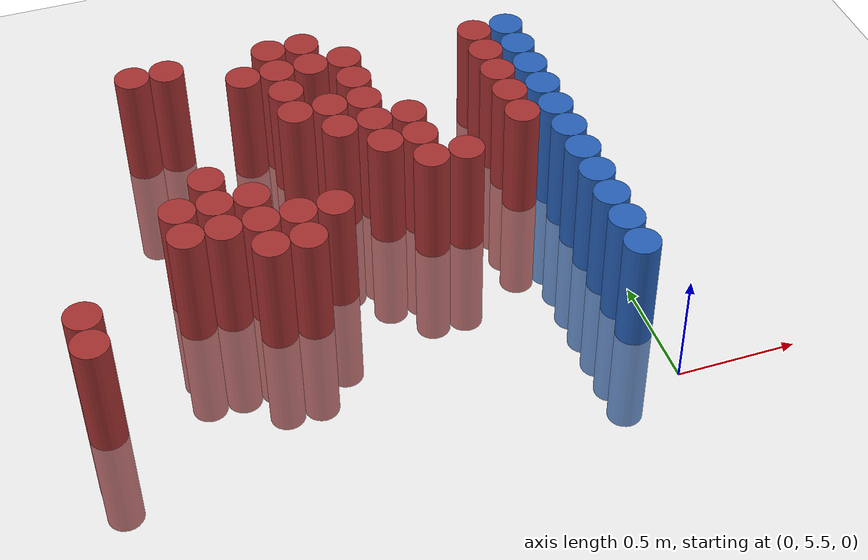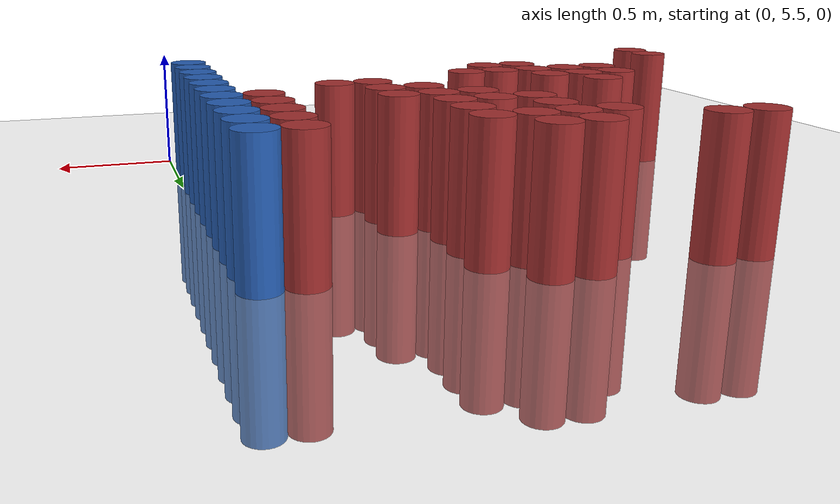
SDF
<sdf version="1.6">
 <world name="default">
  <model name="ground_plane">
   <static>1</static>
   <link name="link">
    <collision name="collision">
     <geometry><plane><normal>0 0 1</normal><size>100 100</size></plane></geometry>
     <surface><friction><ode><mu>100</mu><mu2>50</mu2></ode></friction></surface>
    </collision>
    <visual name="visual">
     <cast_shadows>0</cast_shadows>
     <geometry><plane><normal>0 0 1</normal><size>100 100</size></plane></geometry>
     <material>
      <script><uri>file://media/materials/scripts/gazebo.material</uri><name>Gazebo/Grey</name></script>
     </material>
    </visual>
   </link>
  </model>
  <model name="unit_cylinder_211">
   <static>1</static>
   <pose>-2.175000 5.925000 0.000000 0.000000 0.000000 0.000000</pose>
   <link name="link">
    <inertial>
     <mass>1</mass>
     <inertia><ixx>0.145833</ixx><ixy>0</ixy><ixz>0</ixz><iyy>0.145833</iyy><iyz>0</iyz><izz>0.125</izz></inertia>
    </inertial>
    <collision name="collision">
     <geometry><cylinder><radius>0.075000</radius><length>1</length></cylinder></geometry>
    </collision>
    <visual name="visual">
     <geometry><cylinder><radius>0.075000</radius><length>1</length></cylinder></geometry>
     <material>
      <ambient>0.648000 0.192000 0.192000 1</ambient>
      <diffuse>0.648000 0.192000 0.192000 1</diffuse>
     </material>
     <material>
      <script><name>Gazebo/Grey</name><uri>file://media/materials/scripts/gazebo.material</uri></script>
     </material>
    </visual>
   </link>
  </model>
  <model name="unit_cylinder_212">
   <static>1</static>
   <pose>-2.175000 6.075000 0.000000 0.000000 0.000000 0.000000</pose>
   <link name="link">
    <inertial>
     <mass>1</mass>
     <inertia><ixx>0.145833</ixx><ixy>0</ixy><ixz>0</ixz><iyy>0.145833</iyy><iyz>0</iyz><izz>0.125</izz></inertia>
    </inertial>
    <collision name="collision">
     <geometry><cylinder><radius>0.075000</radius><length>1</length></cylinder></geometry>
    </collision>
    <visual name="visual">
     <geometry><cylinder><radius>0.075000</radius><length>1</length></cylinder></geometry>
     <material>
      <ambient>0.648000 0.192000 0.192000 1</ambient>
      <diffuse>0.648000 0.192000 0.192000 1</diffuse>
     </material>
     <material>
      <script><name>Gazebo/Grey</name><uri>file://media/materials/scripts/gazebo.material</uri></script>
     </material>
    </visual>
   </link>
  </model>
  <model name="unit_cylinder_228">
   <static>1</static>
   <pose>-1.725000 6.375000 0.000000 0.000000 0.000000 0.000000</pose>
   <link name="link">
    <inertial>
     <mass>1</mass>
     <inertia><ixx>0.145833</ixx><ixy>0</ixy><ixz>0</ixz><iyy>0.145833</iyy><iyz>0</iyz><izz>0.125</izz></inertia>
    </inertial>
    <collision name="collision">
     <geometry><cylinder><radius>0.075000</radius><length>1</length></cylinder></geometry>
    </collision>
    <visual name="visual">
     <geometry><cylinder><radius>0.075000</radius><length>1</length></cylinder></geometry>
     <material>
      <ambient>0.648000 0.192000 0.192000 1</ambient>
      <diffuse>0.648000 0.192000 0.192000 1</diffuse>
     </material>
     <material>
      <script><name>Gazebo/Grey</name><uri>file://media/materials/scripts/gazebo.material</uri></script>
     </material>
    </visual>
   </link>
  </model>
  <model name="unit_cylinder_229">
   <static>1</static>
   <pose>-1.725000 6.525000 0.000000 0.000000 0.000000 0.000000</pose>
   <link name="link">
    <inertial>
     <mass>1</mass>
     <inertia><ixx>0.145833</ixx><ixy>0</ixy><ixz>0</ixz><iyy>0.145833</iyy><iyz>0</iyz><izz>0.125</izz></inertia>
    </inertial>
    <collision name="collision">
     <geometry><cylinder><radius>0.075000</radius><length>1</length></cylinder></geometry>
    </collision>
    <visual name="visual">
     <geometry><cylinder><radius>0.075000</radius><length>1</length></cylinder></geometry>
     <material>
      <ambient>0.648000 0.192000 0.192000 1</ambient>
      <diffuse>0.648000 0.192000 0.192000 1</diffuse>
     </material>
     <material>
      <script><name>Gazebo/Grey</name><uri>file://media/materials/scripts/gazebo.material</uri></script>
     </material>
    </visual>
   </link>
  </model>
  <model name="unit_cylinder_230">
   <static>1</static>
   <pose>-1.725000 7.425000 0.000000 0.000000 0.000000 0.000000</pose>
   <link name="link">
    <inertial>
     <mass>1</mass>
     <inertia><ixx>0.145833</ixx><ixy>0</ixy><ixz>0</ixz><iyy>0.145833</iyy><iyz>0</iyz><izz>0.125</izz></inertia>
    </inertial>
    <collision name="collision">
     <geometry><cylinder><radius>0.075000</radius><length>1</length></cylinder></geometry>
    </collision>
    <visual name="visual">
     <geometry><cylinder><radius>0.075000</radius><length>1</length></cylinder></geometry>
     <material>
      <ambient>0.648000 0.192000 0.192000 1</ambient>
      <diffuse>0.648000 0.192000 0.192000 1</diffuse>
     </material>
     <material>
      <script><name>Gazebo/Grey</name><uri>file://media/materials/scripts/gazebo.material</uri></script>
     </material>
    </visual>
   </link>
  </model>
  <model name="unit_cylinder_235">
   <static>1</static>
   <pose>-1.575000 6.375000 0.000000 0.000000 0.000000 0.000000</pose>
   <link name="link">
    <inertial>
     <mass>1</mass>
     <inertia><ixx>0.145833</ixx><ixy>0</ixy><ixz>0</ixz><iyy>0.145833</iyy><iyz>0</iyz><izz>0.125</izz></inertia>
    </inertial>
    <collision name="collision">
     <geometry><cylinder><radius>0.075000</radius><length>1</length></cylinder></geometry>
    </collision>
    <visual name="visual">
     <geometry><cylinder><radius>0.075000</radius><length>1</length></cylinder></geometry>
     <material>
      <ambient>0.648000 0.192000 0.192000 1</ambient>
      <diffuse>0.648000 0.192000 0.192000 1</diffuse>
     </material>
     <material>
      <script><name>Gazebo/Grey</name><uri>file://media/materials/scripts/gazebo.material</uri></script>
     </material>
    </visual>
   </link>
  </model>
  <model name="unit_cylinder_236">
   <static>1</static>
   <pose>-1.575000 6.525000 0.000000 0.000000 0.000000 0.000000</pose>
   <link name="link">
    <inertial>
     <mass>1</mass>
     <inertia><ixx>0.145833</ixx><ixy>0</ixy><ixz>0</ixz><iyy>0.145833</iyy><iyz>0</iyz><izz>0.125</izz></inertia>
    </inertial>
    <collision name="collision">
     <geometry><cylinder><radius>0.075000</radius><length>1</length></cylinder></geometry>
    </collision>
    <visual name="visual">
     <geometry><cylinder><radius>0.075000</radius><length>1</length></cylinder></geometry>
     <material>
      <ambient>0.648000 0.192000 0.192000 1</ambient>
      <diffuse>0.648000 0.192000 0.192000 1</diffuse>
     </material>
     <material>
      <script><name>Gazebo/Grey</name><uri>file://media/materials/scripts/gazebo.material</uri></script>
     </material>
    </visual>
   </link>
  </model>
  <model name="unit_cylinder_237">
   <static>1</static>
   <pose>-1.575000 6.675000 0.000000 0.000000 0.000000 0.000000</pose>
   <link name="link">
    <inertial>
     <mass>1</mass>
     <inertia><ixx>0.145833</ixx><ixy>0</ixy><ixz>0</ixz><iyy>0.145833</iyy><iyz>0</iyz><izz>0.125</izz></inertia>
    </inertial>
    <collision name="collision">
     <geometry><cylinder><radius>0.075000</radius><length>1</length></cylinder></geometry>
    </collision>
    <visual name="visual">
     <geometry><cylinder><radius>0.075000</radius><length>1</length></cylinder></geometry>
     <material>
      <ambient>0.648000 0.192000 0.192000 1</ambient>
      <diffuse>0.648000 0.192000 0.192000 1</diffuse>
     </material>
     <material>
      <script><name>Gazebo/Grey</name><uri>file://media/materials/scripts/gazebo.material</uri></script>
     </material>
    </visual>
   </link>
  </model>
  <model name="unit_cylinder_238">
   <static>1</static>
   <pose>-1.575000 7.425000 0.000000 0.000000 0.000000 0.000000</pose>
   <link name="link">
    <inertial>
     <mass>1</mass>
     <inertia><ixx>0.145833</ixx><ixy>0</ixy><ixz>0</ixz><iyy>0.145833</iyy><iyz>0</iyz><izz>0.125</izz></inertia>
    </inertial>
    <collision name="collision">
     <geometry><cylinder><radius>0.075000</radius><length>1</length></cylinder></geometry>
    </collision>
    <visual name="visual">
     <geometry><cylinder><radius>0.075000</radius><length>1</length></cylinder></geometry>
     <material>
      <ambient>0.648000 0.192000 0.192000 1</ambient>
      <diffuse>0.648000 0.192000 0.192000 1</diffuse>
     </material>
     <material>
      <script><name>Gazebo/Grey</name><uri>file://media/materials/scripts/gazebo.material</uri></script>
     </material>
    </visual>
   </link>
  </model>
  <model name="unit_cylinder_242">
   <static>1</static>
   <pose>-1.425000 6.225000 0.000000 0.000000 0.000000 0.000000</pose>
   <link name="link">
    <inertial>
     <mass>1</mass>
     <inertia><ixx>0.145833</ixx><ixy>0</ixy><ixz>0</ixz><iyy>0.145833</iyy><iyz>0</iyz><izz>0.125</izz></inertia>
    </inertial>
    <collision name="collision">
     <geometry><cylinder><radius>0.075000</radius><length>1</length></cylinder></geometry>
    </collision>
    <visual name="visual">
     <geometry><cylinder><radius>0.075000</radius><length>1</length></cylinder></geometry>
     <material>
      <ambient>0.648000 0.192000 0.192000 1</ambient>
      <diffuse>0.648000 0.192000 0.192000 1</diffuse>
     </material>
     <material>
      <script><name>Gazebo/Grey</name><uri>file://media/materials/scripts/gazebo.material</uri></script>
     </material>
    </visual>
   </link>
  </model>
  <model name="unit_cylinder_243">
   <static>1</static>
   <pose>-1.425000 6.375000 0.000000 0.000000 0.000000 0.000000</pose>
   <link name="link">
    <inertial>
     <mass>1</mass>
     <inertia><ixx>0.145833</ixx><ixy>0</ixy><ixz>0</ixz><iyy>0.145833</iyy><iyz>0</iyz><izz>0.125</izz></inertia>
    </inertial>
    <collision name="collision">
     <geometry><cylinder><radius>0.075000</radius><length>1</length></cylinder></geometry>
    </collision>
    <visual name="visual">
     <geometry><cylinder><radius>0.075000</radius><length>1</length></cylinder></geometry>
     <material>
      <ambient>0.648000 0.192000 0.192000 1</ambient>
      <diffuse>0.648000 0.192000 0.192000 1</diffuse>
     </material>
     <material>
      <script><name>Gazebo/Grey</name><uri>file://media/materials/scripts/gazebo.material</uri></script>
     </material>
    </visual>
   </link>
  </model>
  <model name="unit_cylinder_244">
   <static>1</static>
   <pose>-1.425000 6.525000 0.000000 0.000000 0.000000 0.000000</pose>
   <link name="link">
    <inertial>
     <mass>1</mass>
     <inertia><ixx>0.145833</ixx><ixy>0</ixy><ixz>0</ixz><iyy>0.145833</iyy><iyz>0</iyz><izz>0.125</izz></inertia>
    </inertial>
    <collision name="collision">
     <geometry><cylinder><radius>0.075000</radius><length>1</length></cylinder></geometry>
    </collision>
    <visual name="visual">
     <geometry><cylinder><radius>0.075000</radius><length>1</length></cylinder></geometry>
     <material>
      <ambient>0.648000 0.192000 0.192000 1</ambient>
      <diffuse>0.648000 0.192000 0.192000 1</diffuse>
     </material>
     <material>
      <script><name>Gazebo/Grey</name><uri>file://media/materials/scripts/gazebo.material</uri></script>
     </material>
    </visual>
   </link>
  </model>
  <model name="unit_cylinder_250">
   <static>1</static>
   <pose>-1.275000 6.225000 0.000000 0.000000 0.000000 0.000000</pose>
   <link name="link">
    <inertial>
     <mass>1</mass>
     <inertia><ixx>0.145833</ixx><ixy>0</ixy><ixz>0</ixz><iyy>0.145833</iyy><iyz>0</iyz><izz>0.125</izz></inertia>
    </inertial>
    <collision name="collision">
     <geometry><cylinder><radius>0.075000</radius><length>1</length></cylinder></geometry>
    </collision>
    <visual name="visual">
     <geometry><cylinder><radius>0.075000</radius><length>1</length></cylinder></geometry>
     <material>
      <ambient>0.648000 0.192000 0.192000 1</ambient>
      <diffuse>0.648000 0.192000 0.192000 1</diffuse>
     </material>
     <material>
      <script><name>Gazebo/Grey</name><uri>file://media/materials/scripts/gazebo.material</uri></script>
     </material>
    </visual>
   </link>
  </model>
  <model name="unit_cylinder_251">
   <static>1</static>
   <pose>-1.275000 6.375000 0.000000 0.000000 0.000000 0.000000</pose>
   <link name="link">
    <inertial>
     <mass>1</mass>
     <inertia><ixx>0.145833</ixx><ixy>0</ixy><ixz>0</ixz><iyy>0.145833</iyy><iyz>0</iyz><izz>0.125</izz></inertia>
    </inertial>
    <collision name="collision">
     <geometry><cylinder><radius>0.075000</radius><length>1</length></cylinder></geometry>
    </collision>
    <visual name="visual">
     <geometry><cylinder><radius>0.075000</radius><length>1</length></cylinder></geometry>
     <material>
      <ambient>0.648000 0.192000 0.192000 1</ambient>
      <diffuse>0.648000 0.192000 0.192000 1</diffuse>
     </material>
     <material>
      <script><name>Gazebo/Grey</name><uri>file://media/materials/scripts/gazebo.material</uri></script>
     </material>
    </visual>
   </link>
  </model>
  <model name="unit_cylinder_252">
   <static>1</static>
   <pose>-1.275000 7.275000 0.000000 0.000000 0.000000 0.000000</pose>
   <link name="link">
    <inertial>
     <mass>1</mass>
     <inertia><ixx>0.145833</ixx><ixy>0</ixy><ixz>0</ixz><iyy>0.145833</iyy><iyz>0</iyz><izz>0.125</izz></inertia>
    </inertial>
    <collision name="collision">
     <geometry><cylinder><radius>0.075000</radius><length>1</length></cylinder></geometry>
    </collision>
    <visual name="visual">
     <geometry><cylinder><radius>0.075000</radius><length>1</length></cylinder></geometry>
     <material>
      <ambient>0.648000 0.192000 0.192000 1</ambient>
      <diffuse>0.648000 0.192000 0.192000 1</diffuse>
     </material>
     <material>
      <script><name>Gazebo/Grey</name><uri>file://media/materials/scripts/gazebo.material</uri></script>
     </material>
    </visual>
   </link>
  </model>
  <model name="unit_cylinder_258">
   <static>1</static>
   <pose>-1.125000 6.375000 0.000000 0.000000 0.000000 0.000000</pose>
   <link name="link">
    <inertial>
     <mass>1</mass>
     <inertia><ixx>0.145833</ixx><ixy>0</ixy><ixz>0</ixz><iyy>0.145833</iyy><iyz>0</iyz><izz>0.125</izz></inertia>
    </inertial>
    <collision name="collision">
     <geometry><cylinder><radius>0.075000</radius><length>1</length></cylinder></geometry>
    </collision>
    <visual name="visual">
     <geometry><cylinder><radius>0.075000</radius><length>1</length></cylinder></geometry>
     <material>
      <ambient>0.648000 0.192000 0.192000 1</ambient>
      <diffuse>0.648000 0.192000 0.192000 1</diffuse>
     </material>
     <material>
      <script><name>Gazebo/Grey</name><uri>file://media/materials/scripts/gazebo.material</uri></script>
     </material>
    </visual>
   </link>
  </model>
  <model name="unit_cylinder_259">
   <static>1</static>
   <pose>-1.125000 6.975000 0.000000 0.000000 0.000000 0.000000</pose>
   <link name="link">
    <inertial>
     <mass>1</mass>
     <inertia><ixx>0.145833</ixx><ixy>0</ixy><ixz>0</ixz><iyy>0.145833</iyy><iyz>0</iyz><izz>0.125</izz></inertia>
    </inertial>
    <collision name="collision">
     <geometry><cylinder><radius>0.075000</radius><length>1</length></cylinder></geometry>
    </collision>
    <visual name="visual">
     <geometry><cylinder><radius>0.075000</radius><length>1</length></cylinder></geometry>
     <material>
      <ambient>0.648000 0.192000 0.192000 1</ambient>
      <diffuse>0.648000 0.192000 0.192000 1</diffuse>
     </material>
     <material>
      <script><name>Gazebo/Grey</name><uri>file://media/materials/scripts/gazebo.material</uri></script>
     </material>
    </visual>
   </link>
  </model>
  <model name="unit_cylinder_260">
   <static>1</static>
   <pose>-1.125000 7.125000 0.000000 0.000000 0.000000 0.000000</pose>
   <link name="link">
    <inertial>
     <mass>1</mass>
     <inertia><ixx>0.145833</ixx><ixy>0</ixy><ixz>0</ixz><iyy>0.145833</iyy><iyz>0</iyz><izz>0.125</izz></inertia>
    </inertial>
    <collision name="collision">
     <geometry><cylinder><radius>0.075000</radius><length>1</length></cylinder></geometry>
    </collision>
    <visual name="visual">
     <geometry><cylinder><radius>0.075000</radius><length>1</length></cylinder></geometry>
     <material>
      <ambient>0.648000 0.192000 0.192000 1</ambient>
      <diffuse>0.648000 0.192000 0.192000 1</diffuse>
     </material>
     <material>
      <script><name>Gazebo/Grey</name><uri>file://media/materials/scripts/gazebo.material</uri></script>
     </material>
    </visual>
   </link>
  </model>
  <model name="unit_cylinder_261">
   <static>1</static>
   <pose>-1.125000 7.275000 0.000000 0.000000 0.000000 0.000000</pose>
   <link name="link">
    <inertial>
     <mass>1</mass>
     <inertia><ixx>0.145833</ixx><ixy>0</ixy><ixz>0</ixz><iyy>0.145833</iyy><iyz>0</iyz><izz>0.125</izz></inertia>
    </inertial>
    <collision name="collision">
     <geometry><cylinder><radius>0.075000</radius><length>1</length></cylinder></geometry>
    </collision>
    <visual name="visual">
     <geometry><cylinder><radius>0.075000</radius><length>1</length></cylinder></geometry>
     <material>
      <ambient>0.648000 0.192000 0.192000 1</ambient>
      <diffuse>0.648000 0.192000 0.192000 1</diffuse>
     </material>
     <material>
      <script><name>Gazebo/Grey</name><uri>file://media/materials/scripts/gazebo.material</uri></script>
     </material>
    </visual>
   </link>
  </model>
  <model name="unit_cylinder_262">
   <static>1</static>
   <pose>-1.125000 7.425000 0.000000 0.000000 0.000000 0.000000</pose>
   <link name="link">
    <inertial>
     <mass>1</mass>
     <inertia><ixx>0.145833</ixx><ixy>0</ixy><ixz>0</ixz><iyy>0.145833</iyy><iyz>0</iyz><izz>0.125</izz></inertia>
    </inertial>
    <collision name="collision">
     <geometry><cylinder><radius>0.075000</radius><length>1</length></cylinder></geometry>
    </collision>
    <visual name="visual">
     <geometry><cylinder><radius>0.075000</radius><length>1</length></cylinder></geometry>
     <material>
      <ambient>0.648000 0.192000 0.192000 1</ambient>
      <diffuse>0.648000 0.192000 0.192000 1</diffuse>
     </material>
     <material>
      <script><name>Gazebo/Grey</name><uri>file://media/materials/scripts/gazebo.material</uri></script>
     </material>
    </visual>
   </link>
  </model>
  <model name="unit_cylinder_267">
   <static>1</static>
   <pose>-0.975000 6.825000 0.000000 0.000000 0.000000 0.000000</pose>
   <link name="link">
    <inertial>
     <mass>1</mass>
     <inertia><ixx>0.145833</ixx><ixy>0</ixy><ixz>0</ixz><iyy>0.145833</iyy><iyz>0</iyz><izz>0.125</izz></inertia>
    </inertial>
    <collision name="collision">
     <geometry><cylinder><radius>0.075000</radius><length>1</length></cylinder></geometry>
    </collision>
    <visual name="visual">
     <geometry><cylinder><radius>0.075000</radius><length>1</length></cylinder></geometry>
     <material>
      <ambient>0.648000 0.192000 0.192000 1</ambient>
      <diffuse>0.648000 0.192000 0.192000 1</diffuse>
     </material>
     <material>
      <script><name>Gazebo/Grey</name><uri>file://media/materials/scripts/gazebo.material</uri></script>
     </material>
    </visual>
   </link>
  </model>
  <model name="unit_cylinder_268">
   <static>1</static>
   <pose>-0.975000 6.975000 0.000000 0.000000 0.000000 0.000000</pose>
   <link name="link">
    <inertial>
     <mass>1</mass>
     <inertia><ixx>0.145833</ixx><ixy>0</ixy><ixz>0</ixz><iyy>0.145833</iyy><iyz>0</iyz><izz>0.125</izz></inertia>
    </inertial>
    <collision name="collision">
     <geometry><cylinder><radius>0.075000</radius><length>1</length></cylinder></geometry>
    </collision>
    <visual name="visual">
     <geometry><cylinder><radius>0.075000</radius><length>1</length></cylinder></geometry>
     <material>
      <ambient>0.648000 0.192000 0.192000 1</ambient>
      <diffuse>0.648000 0.192000 0.192000 1</diffuse>
     </material>
     <material>
      <script><name>Gazebo/Grey</name><uri>file://media/materials/scripts/gazebo.material</uri></script>
     </material>
    </visual>
   </link>
  </model>
  <model name="unit_cylinder_269">
   <static>1</static>
   <pose>-0.975000 7.275000 0.000000 0.000000 0.000000 0.000000</pose>
   <link name="link">
    <inertial>
     <mass>1</mass>
     <inertia><ixx>0.145833</ixx><ixy>0</ixy><ixz>0</ixz><iyy>0.145833</iyy><iyz>0</iyz><izz>0.125</izz></inertia>
    </inertial>
    <collision name="collision">
     <geometry><cylinder><radius>0.075000</radius><length>1</length></cylinder></geometry>
    </collision>
    <visual name="visual">
     <geometry><cylinder><radius>0.075000</radius><length>1</length></cylinder></geometry>
     <material>
      <ambient>0.648000 0.192000 0.192000 1</ambient>
      <diffuse>0.648000 0.192000 0.192000 1</diffuse>
     </material>
     <material>
      <script><name>Gazebo/Grey</name><uri>file://media/materials/scripts/gazebo.material</uri></script>
     </material>
    </visual>
   </link>
  </model>
  <model name="unit_cylinder_270">
   <static>1</static>
   <pose>-0.975000 7.425000 0.000000 0.000000 0.000000 0.000000</pose>
   <link name="link">
    <inertial>
     <mass>1</mass>
     <inertia><ixx>0.145833</ixx><ixy>0</ixy><ixz>0</ixz><iyy>0.145833</iyy><iyz>0</iyz><izz>0.125</izz></inertia>
    </inertial>
    <collision name="collision">
     <geometry><cylinder><radius>0.075000</radius><length>1</length></cylinder></geometry>
    </collision>
    <visual name="visual">
     <geometry><cylinder><radius>0.075000</radius><length>1</length></cylinder></geometry>
     <material>
      <ambient>0.648000 0.192000 0.192000 1</ambient>
      <diffuse>0.648000 0.192000 0.192000 1</diffuse>
     </material>
     <material>
      <script><name>Gazebo/Grey</name><uri>file://media/materials/scripts/gazebo.material</uri></script>
     </material>
    </visual>
   </link>
  </model>
  <model name="unit_cylinder_276">
   <static>1</static>
   <pose>-0.825000 6.675000 0.000000 0.000000 0.000000 0.000000</pose>
   <link name="link">
    <inertial>
     <mass>1</mass>
     <inertia><ixx>0.145833</ixx><ixy>0</ixy><ixz>0</ixz><iyy>0.145833</iyy><iyz>0</iyz><izz>0.125</izz></inertia>
    </inertial>
    <collision name="collision">
     <geometry><cylinder><radius>0.075000</radius><length>1</length></cylinder></geometry>
    </collision>
    <visual name="visual">
     <geometry><cylinder><radius>0.075000</radius><length>1</length></cylinder></geometry>
     <material>
      <ambient>0.648000 0.192000 0.192000 1</ambient>
      <diffuse>0.648000 0.192000 0.192000 1</diffuse>
     </material>
     <material>
      <script><name>Gazebo/Grey</name><uri>file://media/materials/scripts/gazebo.material</uri></script>
     </material>
    </visual>
   </link>
  </model>
  <model name="unit_cylinder_277">
   <static>1</static>
   <pose>-0.825000 6.825000 0.000000 0.000000 0.000000 0.000000</pose>
   <link name="link">
    <inertial>
     <mass>1</mass>
     <inertia><ixx>0.145833</ixx><ixy>0</ixy><ixz>0</ixz><iyy>0.145833</iyy><iyz>0</iyz><izz>0.125</izz></inertia>
    </inertial>
    <collision name="collision">
     <geometry><cylinder><radius>0.075000</radius><length>1</length></cylinder></geometry>
    </collision>
    <visual name="visual">
     <geometry><cylinder><radius>0.075000</radius><length>1</length></cylinder></geometry>
     <material>
      <ambient>0.648000 0.192000 0.192000 1</ambient>
      <diffuse>0.648000 0.192000 0.192000 1</diffuse>
     </material>
     <material>
      <script><name>Gazebo/Grey</name><uri>file://media/materials/scripts/gazebo.material</uri></script>
     </material>
    </visual>
   </link>
  </model>
  <model name="unit_cylinder_278">
   <static>1</static>
   <pose>-0.825000 6.975000 0.000000 0.000000 0.000000 0.000000</pose>
   <link name="link">
    <inertial>
     <mass>1</mass>
     <inertia><ixx>0.145833</ixx><ixy>0</ixy><ixz>0</ixz><iyy>0.145833</iyy><iyz>0</iyz><izz>0.125</izz></inertia>
    </inertial>
    <collision name="collision">
     <geometry><cylinder><radius>0.075000</radius><length>1</length></cylinder></geometry>
    </collision>
    <visual name="visual">
     <geometry><cylinder><radius>0.075000</radius><length>1</length></cylinder></geometry>
     <material>
      <ambient>0.648000 0.192000 0.192000 1</ambient>
      <diffuse>0.648000 0.192000 0.192000 1</diffuse>
     </material>
     <material>
      <script><name>Gazebo/Grey</name><uri>file://media/materials/scripts/gazebo.material</uri></script>
     </material>
    </visual>
   </link>
  </model>
  <model name="unit_cylinder_279">
   <static>1</static>
   <pose>-0.825000 7.125000 0.000000 0.000000 0.000000 0.000000</pose>
   <link name="link">
    <inertial>
     <mass>1</mass>
     <inertia><ixx>0.145833</ixx><ixy>0</ixy><ixz>0</ixz><iyy>0.145833</iyy><iyz>0</iyz><izz>0.125</izz></inertia>
    </inertial>
    <collision name="collision">
     <geometry><cylinder><radius>0.075000</radius><length>1</length></cylinder></geometry>
    </collision>
    <visual name="visual">
     <geometry><cylinder><radius>0.075000</radius><length>1</length></cylinder></geometry>
     <material>
      <ambient>0.648000 0.192000 0.192000 1</ambient>
      <diffuse>0.648000 0.192000 0.192000 1</diffuse>
     </material>
     <material>
      <script><name>Gazebo/Grey</name><uri>file://media/materials/scripts/gazebo.material</uri></script>
     </material>
    </visual>
   </link>
  </model>
  <model name="unit_cylinder_280">
   <static>1</static>
   <pose>-0.825000 7.275000 0.000000 0.000000 0.000000 0.000000</pose>
   <link name="link">
    <inertial>
     <mass>1</mass>
     <inertia><ixx>0.145833</ixx><ixy>0</ixy><ixz>0</ixz><iyy>0.145833</iyy><iyz>0</iyz><izz>0.125</izz></inertia>
    </inertial>
    <collision name="collision">
     <geometry><cylinder><radius>0.075000</radius><length>1</length></cylinder></geometry>
    </collision>
    <visual name="visual">
     <geometry><cylinder><radius>0.075000</radius><length>1</length></cylinder></geometry>
     <material>
      <ambient>0.648000 0.192000 0.192000 1</ambient>
      <diffuse>0.648000 0.192000 0.192000 1</diffuse>
     </material>
     <material>
      <script><name>Gazebo/Grey</name><uri>file://media/materials/scripts/gazebo.material</uri></script>
     </material>
    </visual>
   </link>
  </model>
  <model name="unit_cylinder_288">
   <static>1</static>
   <pose>-0.675000 6.525000 0.000000 0.000000 0.000000 0.000000</pose>
   <link name="link">
    <inertial>
     <mass>1</mass>
     <inertia><ixx>0.145833</ixx><ixy>0</ixy><ixz>0</ixz><iyy>0.145833</iyy><iyz>0</iyz><izz>0.125</izz></inertia>
    </inertial>
    <collision name="collision">
     <geometry><cylinder><radius>0.075000</radius><length>1</length></cylinder></geometry>
    </collision>
    <visual name="visual">
     <geometry><cylinder><radius>0.075000</radius><length>1</length></cylinder></geometry>
     <material>
      <ambient>0.648000 0.192000 0.192000 1</ambient>
      <diffuse>0.648000 0.192000 0.192000 1</diffuse>
     </material>
     <material>
      <script><name>Gazebo/Grey</name><uri>file://media/materials/scripts/gazebo.material</uri></script>
     </material>
    </visual>
   </link>
  </model>
  <model name="unit_cylinder_289">
   <static>1</static>
   <pose>-0.675000 6.675000 0.000000 0.000000 0.000000 0.000000</pose>
   <link name="link">
    <inertial>
     <mass>1</mass>
     <inertia><ixx>0.145833</ixx><ixy>0</ixy><ixz>0</ixz><iyy>0.145833</iyy><iyz>0</iyz><izz>0.125</izz></inertia>
    </inertial>
    <collision name="collision">
     <geometry><cylinder><radius>0.075000</radius><length>1</length></cylinder></geometry>
    </collision>
    <visual name="visual">
     <geometry><cylinder><radius>0.075000</radius><length>1</length></cylinder></geometry>
     <material>
      <ambient>0.648000 0.192000 0.192000 1</ambient>
      <diffuse>0.648000 0.192000 0.192000 1</diffuse>
     </material>
     <material>
      <script><name>Gazebo/Grey</name><uri>file://media/materials/scripts/gazebo.material</uri></script>
     </material>
    </visual>
   </link>
  </model>
  <model name="unit_cylinder_290">
   <static>1</static>
   <pose>-0.675000 6.825000 0.000000 0.000000 0.000000 0.000000</pose>
   <link name="link">
    <inertial>
     <mass>1</mass>
     <inertia><ixx>0.145833</ixx><ixy>0</ixy><ixz>0</ixz><iyy>0.145833</iyy><iyz>0</iyz><izz>0.125</izz></inertia>
    </inertial>
    <collision name="collision">
     <geometry><cylinder><radius>0.075000</radius><length>1</length></cylinder></geometry>
    </collision>
    <visual name="visual">
     <geometry><cylinder><radius>0.075000</radius><length>1</length></cylinder></geometry>
     <material>
      <ambient>0.648000 0.192000 0.192000 1</ambient>
      <diffuse>0.648000 0.192000 0.192000 1</diffuse>
     </material>
     <material>
      <script><name>Gazebo/Grey</name><uri>file://media/materials/scripts/gazebo.material</uri></script>
     </material>
    </visual>
   </link>
  </model>
  <model name="unit_cylinder_299">
   <static>1</static>
   <pose>-0.525000 6.525000 0.000000 0.000000 0.000000 0.000000</pose>
   <link name="link">
    <inertial>
     <mass>1</mass>
     <inertia><ixx>0.145833</ixx><ixy>0</ixy><ixz>0</ixz><iyy>0.145833</iyy><iyz>0</iyz><izz>0.125</izz></inertia>
    </inertial>
    <collision name="collision">
     <geometry><cylinder><radius>0.075000</radius><length>1</length></cylinder></geometry>
    </collision>
    <visual name="visual">
     <geometry><cylinder><radius>0.075000</radius><length>1</length></cylinder></geometry>
     <material>
      <ambient>0.648000 0.192000 0.192000 1</ambient>
      <diffuse>0.648000 0.192000 0.192000 1</diffuse>
     </material>
     <material>
      <script><name>Gazebo/Grey</name><uri>file://media/materials/scripts/gazebo.material</uri></script>
     </material>
    </visual>
   </link>
  </model>
  <model name="unit_cylinder_310">
   <static>1</static>
   <pose>-0.225000 6.675000 0.000000 0.000000 0.000000 0.000000</pose>
   <link name="link">
    <inertial>
     <mass>1</mass>
     <inertia><ixx>0.145833</ixx><ixy>0</ixy><ixz>0</ixz><iyy>0.145833</iyy><iyz>0</iyz><izz>0.125</izz></inertia>
    </inertial>
    <collision name="collision">
     <geometry><cylinder><radius>0.075000</radius><length>1</length></cylinder></geometry>
    </collision>
    <visual name="visual">
     <geometry><cylinder><radius>0.075000</radius><length>1</length></cylinder></geometry>
     <material>
      <ambient>0.648000 0.192000 0.192000 1</ambient>
      <diffuse>0.648000 0.192000 0.192000 1</diffuse>
     </material>
     <material>
      <script><name>Gazebo/Grey</name><uri>file://media/materials/scripts/gazebo.material</uri></script>
     </material>
    </visual>
   </link>
  </model>
  <model name="unit_cylinder_311">
   <static>1</static>
   <pose>-0.225000 6.825000 0.000000 0.000000 0.000000 0.000000</pose>
   <link name="link">
    <inertial>
     <mass>1</mass>
     <inertia><ixx>0.145833</ixx><ixy>0</ixy><ixz>0</ixz><iyy>0.145833</iyy><iyz>0</iyz><izz>0.125</izz></inertia>
    </inertial>
    <collision name="collision">
     <geometry><cylinder><radius>0.075000</radius><length>1</length></cylinder></geometry>
    </collision>
    <visual name="visual">
     <geometry><cylinder><radius>0.075000</radius><length>1</length></cylinder></geometry>
     <material>
      <ambient>0.648000 0.192000 0.192000 1</ambient>
      <diffuse>0.648000 0.192000 0.192000 1</diffuse>
     </material>
     <material>
      <script><name>Gazebo/Grey</name><uri>file://media/materials/scripts/gazebo.material</uri></script>
     </material>
    </visual>
   </link>
  </model>
  <model name="unit_cylinder_312">
   <static>1</static>
   <pose>-0.225000 6.975000 0.000000 0.000000 0.000000 0.000000</pose>
   <link name="link">
    <inertial>
     <mass>1</mass>
     <inertia><ixx>0.145833</ixx><ixy>0</ixy><ixz>0</ixz><iyy>0.145833</iyy><iyz>0</iyz><izz>0.125</izz></inertia>
    </inertial>
    <collision name="collision">
     <geometry><cylinder><radius>0.075000</radius><length>1</length></cylinder></geometry>
    </collision>
    <visual name="visual">
     <geometry><cylinder><radius>0.075000</radius><length>1</length></cylinder></geometry>
     <material>
      <ambient>0.648000 0.192000 0.192000 1</ambient>
      <diffuse>0.648000 0.192000 0.192000 1</diffuse>
     </material>
     <material>
      <script><name>Gazebo/Grey</name><uri>file://media/materials/scripts/gazebo.material</uri></script>
     </material>
    </visual>
   </link>
  </model>
  <model name="unit_cylinder_313">
   <static>1</static>
   <pose>-0.225000 7.125000 0.000000 0.000000 0.000000 0.000000</pose>
   <link name="link">
    <inertial>
     <mass>1</mass>
     <inertia><ixx>0.145833</ixx><ixy>0</ixy><ixz>0</ixz><iyy>0.145833</iyy><iyz>0</iyz><izz>0.125</izz></inertia>
    </inertial>
    <collision name="collision">
     <geometry><cylinder><radius>0.075000</radius><length>1</length></cylinder></geometry>
    </collision>
    <visual name="visual">
     <geometry><cylinder><radius>0.075000</radius><length>1</length></cylinder></geometry>
     <material>
      <ambient>0.648000 0.192000 0.192000 1</ambient>
      <diffuse>0.648000 0.192000 0.192000 1</diffuse>
     </material>
     <material>
      <script><name>Gazebo/Grey</name><uri>file://media/materials/scripts/gazebo.material</uri></script>
     </material>
    </visual>
   </link>
  </model>
  <model name="unit_cylinder_314">
   <static>1</static>
   <pose>-0.225000 7.275000 0.000000 0.000000 0.000000 0.000000</pose>
   <link name="link">
    <inertial>
     <mass>1</mass>
     <inertia><ixx>0.145833</ixx><ixy>0</ixy><ixz>0</ixz><iyy>0.145833</iyy><iyz>0</iyz><izz>0.125</izz></inertia>
    </inertial>
    <collision name="collision">
     <geometry><cylinder><radius>0.075000</radius><length>1</length></cylinder></geometry>
    </collision>
    <visual name="visual">
     <geometry><cylinder><radius>0.075000</radius><length>1</length></cylinder></geometry>
     <material>
      <ambient>0.648000 0.192000 0.192000 1</ambient>
      <diffuse>0.648000 0.192000 0.192000 1</diffuse>
     </material>
     <material>
      <script><name>Gazebo/Grey</name><uri>file://media/materials/scripts/gazebo.material</uri></script>
     </material>
    </visual>
   </link>
  </model>
  <model name="unit_cylinder_320">
   <static>1</static>
   <pose>-0.075000 5.775000 0.000000 0.000000 0.000000 0.000000</pose>
   <link name="link">
    <inertial>
     <mass>1</mass>
     <inertia><ixx>0.145833</ixx><ixy>0</ixy><ixz>0</ixz><iyy>0.145833</iyy><iyz>0</iyz><izz>0.125</izz></inertia>
    </inertial>
    <collision name="collision">
     <geometry><cylinder><radius>0.075000</radius><length>1</length></cylinder></geometry>
    </collision>
    <visual name="visual">
     <geometry><cylinder><radius>0.075000</radius><length>1</length></cylinder></geometry>
     <material>
      <ambient>0.152000 0.379000 0.720000 1</ambient>
      <diffuse>0.152000 0.379000 0.720000 1</diffuse>
     </material>
     <material>
      <script><name>Gazebo/Grey</name><uri>file://media/materials/scripts/gazebo.material</uri></script>
     </material>
    </visual>
   </link>
  </model>
  <model name="unit_cylinder_321">
   <static>1</static>
   <pose>-0.075000 5.925000 0.000000 0.000000 0.000000 0.000000</pose>
   <link name="link">
    <inertial>
     <mass>1</mass>
     <inertia><ixx>0.145833</ixx><ixy>0</ixy><ixz>0</ixz><iyy>0.145833</iyy><iyz>0</iyz><izz>0.125</izz></inertia>
    </inertial>
    <collision name="collision">
     <geometry><cylinder><radius>0.075000</radius><length>1</length></cylinder></geometry>
    </collision>
    <visual name="visual">
     <geometry><cylinder><radius>0.075000</radius><length>1</length></cylinder></geometry>
     <material>
      <ambient>0.152000 0.379000 0.720000 1</ambient>
      <diffuse>0.152000 0.379000 0.720000 1</diffuse>
     </material>
     <material>
      <script><name>Gazebo/Grey</name><uri>file://media/materials/scripts/gazebo.material</uri></script>
     </material>
    </visual>
   </link>
  </model>
  <model name="unit_cylinder_322">
   <static>1</static>
   <pose>-0.075000 6.075000 0.000000 0.000000 0.000000 0.000000</pose>
   <link name="link">
    <inertial>
     <mass>1</mass>
     <inertia><ixx>0.145833</ixx><ixy>0</ixy><ixz>0</ixz><iyy>0.145833</iyy><iyz>0</iyz><izz>0.125</izz></inertia>
    </inertial>
    <collision name="collision">
     <geometry><cylinder><radius>0.075000</radius><length>1</length></cylinder></geometry>
    </collision>
    <visual name="visual">
     <geometry><cylinder><radius>0.075000</radius><length>1</length></cylinder></geometry>
     <material>
      <ambient>0.152000 0.379000 0.720000 1</ambient>
      <diffuse>0.152000 0.379000 0.720000 1</diffuse>
     </material>
     <material>
      <script><name>Gazebo/Grey</name><uri>file://media/materials/scripts/gazebo.material</uri></script>
     </material>
    </visual>
   </link>
  </model>
  <model name="unit_cylinder_323">
   <static>1</static>
   <pose>-0.075000 6.225000 0.000000 0.000000 0.000000 0.000000</pose>
   <link name="link">
    <inertial>
     <mass>1</mass>
     <inertia><ixx>0.145833</ixx><ixy>0</ixy><ixz>0</ixz><iyy>0.145833</iyy><iyz>0</iyz><izz>0.125</izz></inertia>
    </inertial>
    <collision name="collision">
     <geometry><cylinder><radius>0.075000</radius><length>1</length></cylinder></geometry>
    </collision>
    <visual name="visual">
     <geometry><cylinder><radius>0.075000</radius><length>1</length></cylinder></geometry>
     <material>
      <ambient>0.152000 0.379000 0.720000 1</ambient>
      <diffuse>0.152000 0.379000 0.720000 1</diffuse>
     </material>
     <material>
      <script><name>Gazebo/Grey</name><uri>file://media/materials/scripts/gazebo.material</uri></script>
     </material>
    </visual>
   </link>
  </model>
  <model name="unit_cylinder_324">
   <static>1</static>
   <pose>-0.075000 6.375000 0.000000 0.000000 0.000000 0.000000</pose>
   <link name="link">
    <inertial>
     <mass>1</mass>
     <inertia><ixx>0.145833</ixx><ixy>0</ixy><ixz>0</ixz><iyy>0.145833</iyy><iyz>0</iyz><izz>0.125</izz></inertia>
    </inertial>
    <collision name="collision">
     <geometry><cylinder><radius>0.075000</radius><length>1</length></cylinder></geometry>
    </collision>
    <visual name="visual">
     <geometry><cylinder><radius>0.075000</radius><length>1</length></cylinder></geometry>
     <material>
      <ambient>0.152000 0.379000 0.720000 1</ambient>
      <diffuse>0.152000 0.379000 0.720000 1</diffuse>
     </material>
     <material>
      <script><name>Gazebo/Grey</name><uri>file://media/materials/scripts/gazebo.material</uri></script>
     </material>
    </visual>
   </link>
  </model>
  <model name="unit_cylinder_325">
   <static>1</static>
   <pose>-0.075000 6.525000 0.000000 0.000000 0.000000 0.000000</pose>
   <link name="link">
    <inertial>
     <mass>1</mass>
     <inertia><ixx>0.145833</ixx><ixy>0</ixy><ixz>0</ixz><iyy>0.145833</iyy><iyz>0</iyz><izz>0.125</izz></inertia>
    </inertial>
    <collision name="collision">
     <geometry><cylinder><radius>0.075000</radius><length>1</length></cylinder></geometry>
    </collision>
    <visual name="visual">
     <geometry><cylinder><radius>0.075000</radius><length>1</length></cylinder></geometry>
     <material>
      <ambient>0.152000 0.379000 0.720000 1</ambient>
      <diffuse>0.152000 0.379000 0.720000 1</diffuse>
     </material>
     <material>
      <script><name>Gazebo/Grey</name><uri>file://media/materials/scripts/gazebo.material</uri></script>
     </material>
    </visual>
   </link>
  </model>
  <model name="unit_cylinder_326">
   <static>1</static>
   <pose>-0.075000 6.675000 0.000000 0.000000 0.000000 0.000000</pose>
   <link name="link">
    <inertial>
     <mass>1</mass>
     <inertia><ixx>0.145833</ixx><ixy>0</ixy><ixz>0</ixz><iyy>0.145833</iyy><iyz>0</iyz><izz>0.125</izz></inertia>
    </inertial>
    <collision name="collision">
     <geometry><cylinder><radius>0.075000</radius><length>1</length></cylinder></geometry>
    </collision>
    <visual name="visual">
     <geometry><cylinder><radius>0.075000</radius><length>1</length></cylinder></geometry>
     <material>
      <ambient>0.152000 0.379000 0.720000 1</ambient>
      <diffuse>0.152000 0.379000 0.720000 1</diffuse>
     </material>
     <material>
      <script><name>Gazebo/Grey</name><uri>file://media/materials/scripts/gazebo.material</uri></script>
     </material>
    </visual>
   </link>
  </model>
  <model name="unit_cylinder_327">
   <static>1</static>
   <pose>-0.075000 6.825000 0.000000 0.000000 0.000000 0.000000</pose>
   <link name="link">
    <inertial>
     <mass>1</mass>
     <inertia><ixx>0.145833</ixx><ixy>0</ixy><ixz>0</ixz><iyy>0.145833</iyy><iyz>0</iyz><izz>0.125</izz></inertia>
    </inertial>
    <collision name="collision">
     <geometry><cylinder><radius>0.075000</radius><length>1</length></cylinder></geometry>
    </collision>
    <visual name="visual">
     <geometry><cylinder><radius>0.075000</radius><length>1</length></cylinder></geometry>
     <material>
      <ambient>0.152000 0.379000 0.720000 1</ambient>
      <diffuse>0.152000 0.379000 0.720000 1</diffuse>
     </material>
     <material>
      <script><name>Gazebo/Grey</name><uri>file://media/materials/scripts/gazebo.material</uri></script>
     </material>
    </visual>
   </link>
  </model>
  <model name="unit_cylinder_328">
   <static>1</static>
   <pose>-0.075000 6.975000 0.000000 0.000000 0.000000 0.000000</pose>
   <link name="link">
    <inertial>
     <mass>1</mass>
     <inertia><ixx>0.145833</ixx><ixy>0</ixy><ixz>0</ixz><iyy>0.145833</iyy><iyz>0</iyz><izz>0.125</izz></inertia>
    </inertial>
    <collision name="collision">
     <geometry><cylinder><radius>0.075000</radius><length>1</length></cylinder></geometry>
    </collision>
    <visual name="visual">
     <geometry><cylinder><radius>0.075000</radius><length>1</length></cylinder></geometry>
     <material>
      <ambient>0.152000 0.379000 0.720000 1</ambient>
      <diffuse>0.152000 0.379000 0.720000 1</diffuse>
     </material>
     <material>
      <script><name>Gazebo/Grey</name><uri>file://media/materials/scripts/gazebo.material</uri></script>
     </material>
    </visual>
   </link>
  </model>
  <model name="unit_cylinder_329">
   <static>1</static>
   <pose>-0.075000 7.125000 0.000000 0.000000 0.000000 0.000000</pose>
   <link name="link">
    <inertial>
     <mass>1</mass>
     <inertia><ixx>0.145833</ixx><ixy>0</ixy><ixz>0</ixz><iyy>0.145833</iyy><iyz>0</iyz><izz>0.125</izz></inertia>
    </inertial>
    <collision name="collision">
     <geometry><cylinder><radius>0.075000</radius><length>1</length></cylinder></geometry>
    </collision>
    <visual name="visual">
     <geometry><cylinder><radius>0.075000</radius><length>1</length></cylinder></geometry>
     <material>
      <ambient>0.152000 0.379000 0.720000 1</ambient>
      <diffuse>0.152000 0.379000 0.720000 1</diffuse>
     </material>
     <material>
      <script><name>Gazebo/Grey</name><uri>file://media/materials/scripts/gazebo.material</uri></script>
     </material>
    </visual>
   </link>
  </model>
  <model name="unit_cylinder_330">
   <static>1</static>
   <pose>-0.075000 7.275000 0.000000 0.000000 0.000000 0.000000</pose>
   <link name="link">
    <inertial>
     <mass>1</mass>
     <inertia><ixx>0.145833</ixx><ixy>0</ixy><ixz>0</ixz><iyy>0.145833</iyy><iyz>0</iyz><izz>0.125</izz></inertia>
    </inertial>
    <collision name="collision">
     <geometry><cylinder><radius>0.075000</radius><length>1</length></cylinder></geometry>
    </collision>
    <visual name="visual">
     <geometry><cylinder><radius>0.075000</radius><length>1</length></cylinder></geometry>
     <material>
      <ambient>0.152000 0.379000 0.720000 1</ambient>
      <diffuse>0.152000 0.379000 0.720000 1</diffuse>
     </material>
     <material>
      <script><name>Gazebo/Grey</name><uri>file://media/materials/scripts/gazebo.material</uri></script>
     </material>
    </visual>
   </link>
  </model>
 </world>
</sdf>
